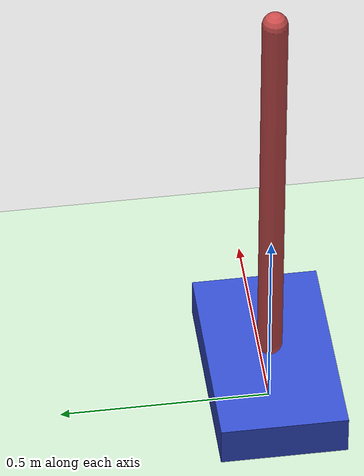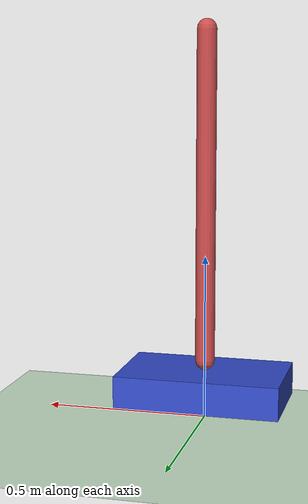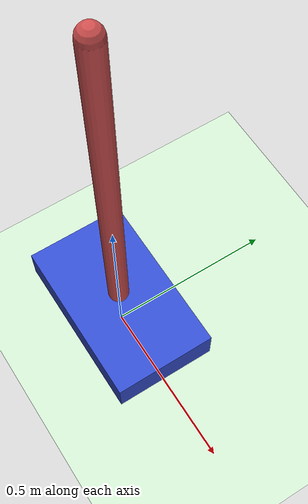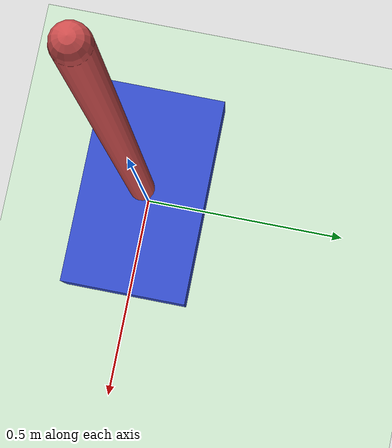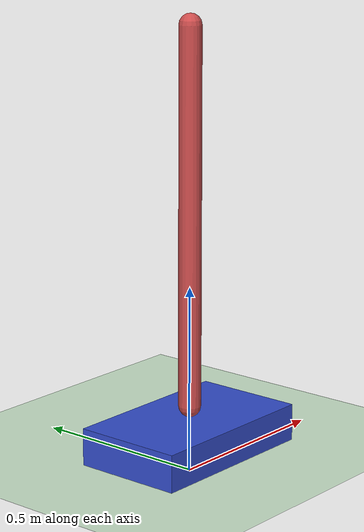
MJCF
<mujoco model="cartpole">
  <compiler inertiafromgeom="true" angle="degree"/>
  <option timestep="0.01" gravity="0 0 -9.81"/>

  <worldbody>
    <!-- 地面 -->
    <geom name="floor" type="plane" size="0 0 0.1" rgba="0.8 0.9 0.8 1"/>

    <!-- 小车主体 -->
    <body name="cart" pos="0 0 0.1">
      <!-- 沿 x 方向滑动 -->
      <joint name="slider" type="slide" axis="1 0 0" range="-5 5"/>
      <geom name="cart_geom" type="box" size="0.25 0.15 0.05" rgba="0.2 0.3 0.8 1"/>

      <!-- 杆，从小车顶部铰接 -->
      <body name="pole" pos="0 0 0.08">
        <joint name="hinge" type="hinge" axis="0 1 0" pos="0 0 0"/>
        <!-- 使用 capsule 表示细长杆（从关节向上 1.0m） -->
        <geom name="pole_geom" type="capsule" fromto="0 0 0 0 0 1.0" size="0.03" rgba="0.8 0.3 0.3 1"/>
        <site name="pole_tip" pos="0 0 1.0" size="0.02" rgba="0 1 0 1"/>
      </body>
    </body>

    <!-- 简单相机，便于可视化 -->
    <camera name="external" pos="0 -3 1.2" xyaxes="1 0 0 0 0.5 0.866"/>
  </worldbody>

  <actuator>
    <!-- 对小车施力（常用） -->
    <motor name="cart_force" joint="slider" gear="100"/>
    <!-- 可选：对杆施扭矩 -->
    <motor name="pole_torque" joint="hinge" gear="1"/>
  </actuator>
</mujoco>
